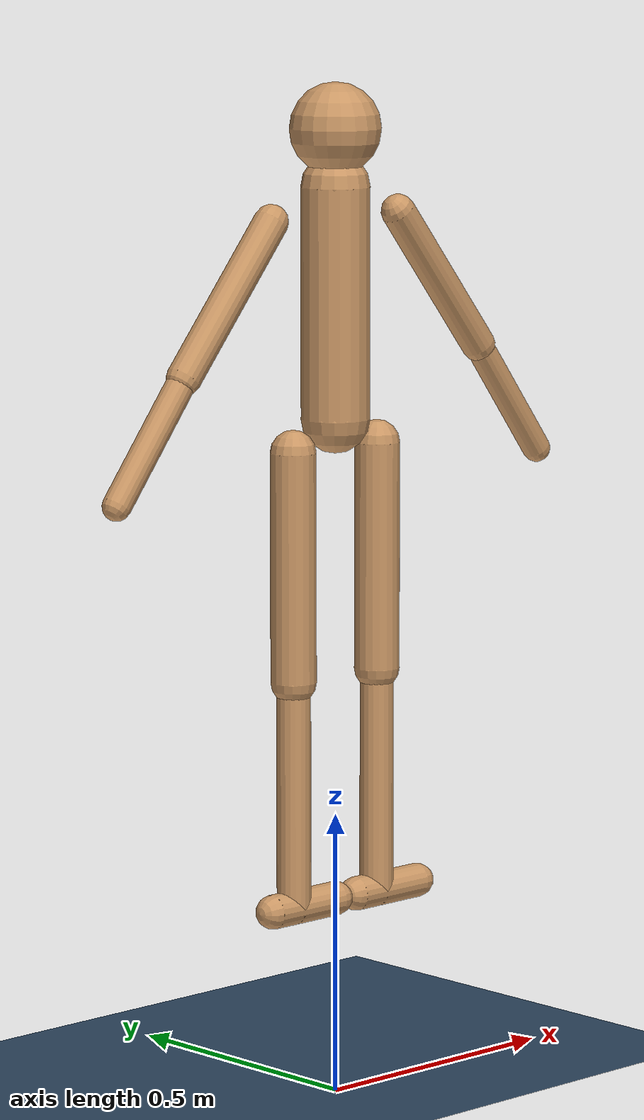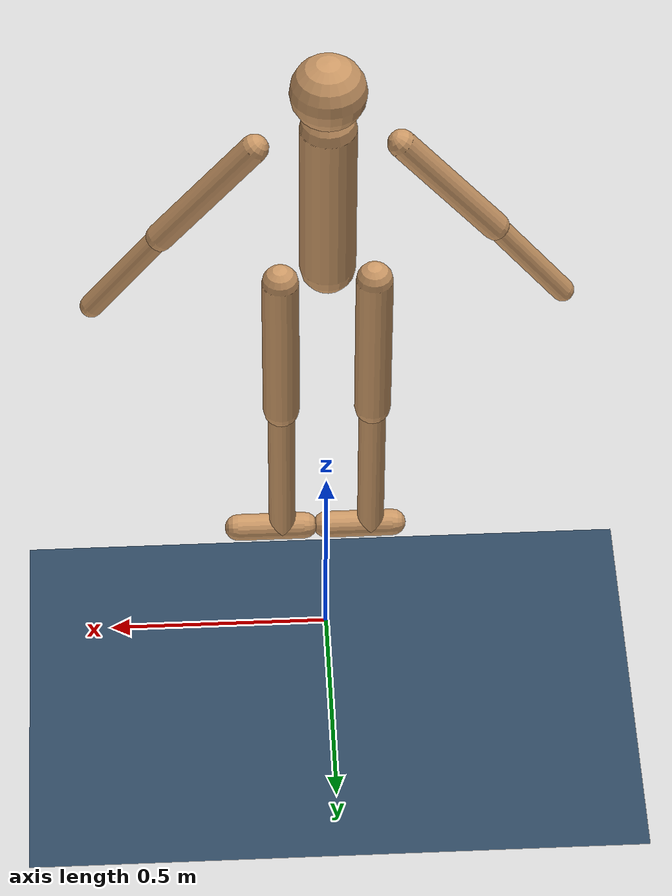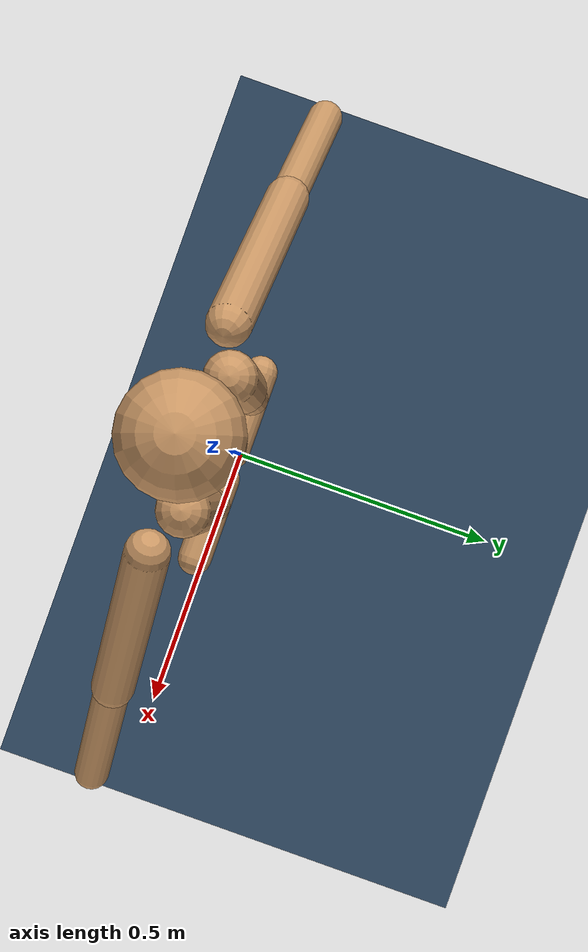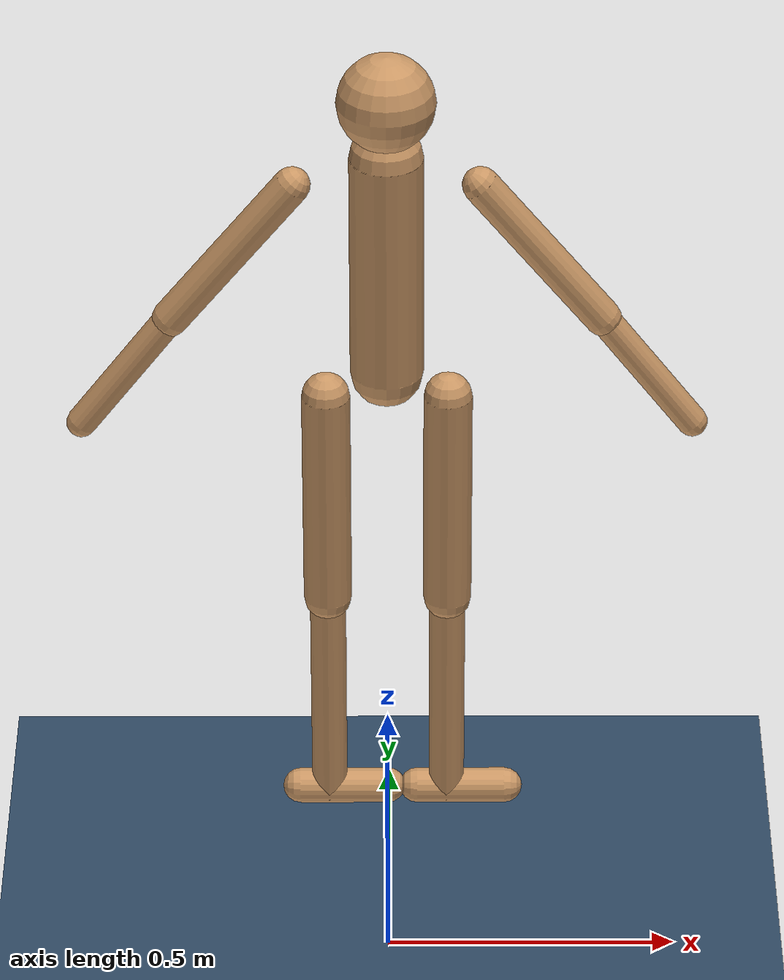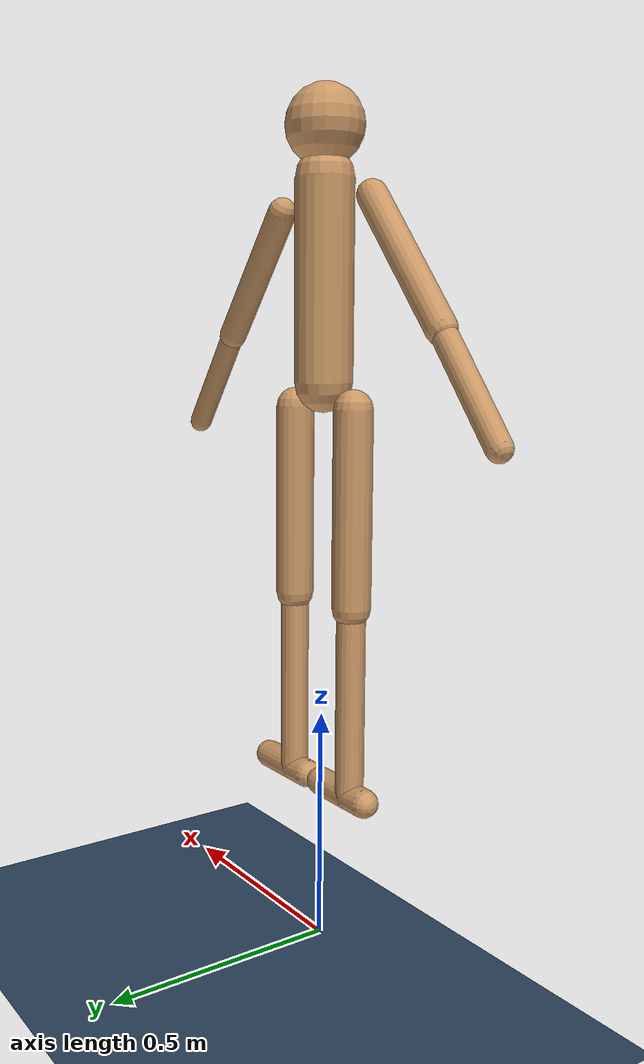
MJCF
<mujoco model="humanoid_plain_arena">
  <compiler angle="radian"/>
  <option timestep="0.005" gravity="0 0 -9.81" iterations="50" tolerance="1e-8"/>

  <default>
    <joint damping="0.5" armature="0.1"/>
    <geom friction="1.0 0.5 0.5" condim="3" contype="2" conaffinity="1"/>
    <motor ctrlrange="-1 1" ctrllimited="true"/>
  </default>

  <asset>
    <texture type="skybox" builtin="gradient" rgb1="0.3 0.5 0.7" rgb2="0.1 0.2 0.4" width="512" height="512"/>
    <texture name="grid_tex" type="2d" builtin="checker" rgb1="0.2 0.3 0.4" rgb2="0.15 0.25 0.35" width="512" height="512" mark="none" markrgb="0.4 0.6 0.8"/>
    <material name="grid_mat" texture="grid_tex" texrepeat="12 12" reflectance="0.2"/>
    <material name="body_mat" rgba="0.8 0.6 0.4 1"/>
  </asset>

  <worldbody>
    <!-- Ground plane — large flat arena for free walking -->
    <geom name="ground" type="plane" size="12 12 0.1" material="grid_mat" contype="1" conaffinity="1"/>
    <light directional="true" pos="0 0 5" dir="0 0 -1" diffuse="0.8 0.8 0.8" specular="0.3 0.3 0.3"/>

    <!-- ─── Simplified Stick-figure Humanoid (same as obstacle scenes) ─── -->
    <body name="torso" pos="0 0 1.2">
      <joint name="root" type="free" damping="0.5"/>
      <geom name="torso_geom" type="capsule" size="0.06" fromto="0 0 0 0 0 0.4" material="body_mat" mass="5" contype="2" conaffinity="1"/>
      <site name="torso_top" pos="0 0 0.4" size="0.01"/>

      <!-- Head: 3 serial hinge joints -->
      <body name="head" pos="0 0 0.5">
        <joint name="head_x" type="hinge" axis="1 0 0" damping="1" armature="0.2" range="-0.5 0.5"/>
        <inertial pos="0 0 0" mass="0.001" diaginertia="1e-6 1e-6 1e-6"/>
        <body name="head_y_body" pos="0 0 0">
          <joint name="head_y" type="hinge" axis="0 1 0" damping="1" armature="0.2" range="-0.5 0.5"/>
          <inertial pos="0 0 0" mass="0.001" diaginertia="1e-6 1e-6 1e-6"/>
          <body name="head_z_body" pos="0 0 0">
            <joint name="head_z" type="hinge" axis="0 0 1" damping="1" armature="0.2" range="-0.5 0.5"/>
            <geom name="head_geom" type="sphere" size="0.08" material="body_mat" mass="1" contype="2" conaffinity="1"/>
          </body>
        </body>
      </body>

      <!-- Left leg -->
      <body name="upper_leg_l" pos="0.10 0 -0.05">
        <joint name="hip_l_x" type="hinge" axis="1 0 0" damping="1" armature="0.2" range="-1.2 1.2"/>
        <inertial pos="0 0 0" mass="0.001" diaginertia="1e-6 1e-6 1e-6"/>
        <body name="hip_l_y_body" pos="0 0 0">
          <joint name="hip_l_y" type="hinge" axis="0 1 0" damping="1" armature="0.2" range="-1.5 1.5"/>
          <inertial pos="0 0 0" mass="0.001" diaginertia="1e-6 1e-6 1e-6"/>
          <body name="hip_l_z_body" pos="0 0 0">
            <joint name="hip_l_z" type="hinge" axis="0 0 1" damping="1" armature="0.2" range="-1.0 1.0"/>
            <geom name="upper_leg_l_geom" type="capsule" size="0.04" fromto="0 0 0 0 0 -0.4" material="body_mat" mass="2" contype="2" conaffinity="1"/>
            <body name="lower_leg_l" pos="0 0 -0.4">
              <joint name="knee_l" type="hinge" axis="0 1 0" damping="1" armature="0.2" range="-2.0 0.01"/>
              <geom name="lower_leg_l_geom" type="capsule" size="0.03" fromto="0 0 0 0 0 -0.4" material="body_mat" mass="1" contype="2" conaffinity="1"/>
              <body name="foot_l" pos="0 0 -0.4">
                <joint name="ankle_l" type="hinge" axis="0 1 0" damping="0.5" armature="0.1" range="-0.5 0.5"/>
                <geom name="foot_l_geom" type="capsule" size="0.03 0.1" fromto="-0.05 0 0 0.1 0 0" material="body_mat" mass="0.5" contype="2" conaffinity="1"/>
                <site name="foot_l_site" pos="0 0 0" size="0.01"/>
              </body>
            </body>
          </body>
        </body>
      </body>

      <!-- Right leg -->
      <body name="upper_leg_r" pos="-0.10 0 -0.05">
        <joint name="hip_r_x" type="hinge" axis="1 0 0" damping="1" armature="0.2" range="-1.2 1.2"/>
        <inertial pos="0 0 0" mass="0.001" diaginertia="1e-6 1e-6 1e-6"/>
        <body name="hip_r_y_body" pos="0 0 0">
          <joint name="hip_r_y" type="hinge" axis="0 1 0" damping="1" armature="0.2" range="-1.5 1.5"/>
          <inertial pos="0 0 0" mass="0.001" diaginertia="1e-6 1e-6 1e-6"/>
          <body name="hip_r_z_body" pos="0 0 0">
            <joint name="hip_r_z" type="hinge" axis="0 0 1" damping="1" armature="0.2" range="-1.0 1.0"/>
            <geom name="upper_leg_r_geom" type="capsule" size="0.04" fromto="0 0 0 0 0 -0.4" material="body_mat" mass="2" contype="2" conaffinity="1"/>
            <body name="lower_leg_r" pos="0 0 -0.4">
              <joint name="knee_r" type="hinge" axis="0 1 0" damping="1" armature="0.2" range="-2.0 0.01"/>
              <geom name="lower_leg_r_geom" type="capsule" size="0.03" fromto="0 0 0 0 0 -0.4" material="body_mat" mass="1" contype="2" conaffinity="1"/>
              <body name="foot_r" pos="0 0 -0.4">
                <joint name="ankle_r" type="hinge" axis="0 1 0" damping="0.5" armature="0.1" range="-0.5 0.5"/>
                <geom name="foot_r_geom" type="capsule" size="0.03 0.1" fromto="-0.05 0 0 0.1 0 0" material="body_mat" mass="0.5" contype="2" conaffinity="1"/>
                <site name="foot_r_site" pos="0 0 0" size="0.01"/>
              </body>
            </body>
          </body>
        </body>
      </body>

      <!-- Left arm -->
      <body name="upper_arm_l" pos="0.15 0 0.35">
        <joint name="shoulder_l_x" type="hinge" axis="1 0 0" damping="1" armature="0.1" range="-1.5 1.5"/>
        <inertial pos="0 0 0" mass="0.001" diaginertia="1e-6 1e-6 1e-6"/>
        <body name="shoulder_l_y_body" pos="0 0 0">
          <joint name="shoulder_l_y" type="hinge" axis="0 1 0" damping="1" armature="0.1" range="-1.5 1.5"/>
          <inertial pos="0 0 0" mass="0.001" diaginertia="1e-6 1e-6 1e-6"/>
          <body name="shoulder_l_z_body" pos="0 0 0">
            <joint name="shoulder_l_z" type="hinge" axis="0 0 1" damping="1" armature="0.1" range="-1.5 1.5"/>
            <geom name="upper_arm_l_geom" type="capsule" size="0.03" fromto="0 0 0 0.2 0 -0.25" material="body_mat" mass="1" contype="2" conaffinity="1"/>
            <body name="lower_arm_l" pos="0.2 0 -0.25">
              <joint name="elbow_l" type="hinge" axis="0 1 0" damping="0.5" armature="0.1" range="-2.5 0"/>
              <geom name="lower_arm_l_geom" type="capsule" size="0.025" fromto="0 0 0 0.15 0 -0.2" material="body_mat" mass="0.5" contype="2" conaffinity="1"/>
            </body>
          </body>
        </body>
      </body>

      <!-- Right arm -->
      <body name="upper_arm_r" pos="-0.15 0 0.35">
        <joint name="shoulder_r_x" type="hinge" axis="1 0 0" damping="1" armature="0.1" range="-1.5 1.5"/>
        <inertial pos="0 0 0" mass="0.001" diaginertia="1e-6 1e-6 1e-6"/>
        <body name="shoulder_r_y_body" pos="0 0 0">
          <joint name="shoulder_r_y" type="hinge" axis="0 1 0" damping="1" armature="0.1" range="-1.5 1.5"/>
          <inertial pos="0 0 0" mass="0.001" diaginertia="1e-6 1e-6 1e-6"/>
          <body name="shoulder_r_z_body" pos="0 0 0">
            <joint name="shoulder_r_z" type="hinge" axis="0 0 1" damping="1" armature="0.1" range="-1.5 1.5"/>
            <geom name="upper_arm_r_geom" type="capsule" size="0.03" fromto="0 0 0 -0.2 0 -0.25" material="body_mat" mass="1" contype="2" conaffinity="1"/>
            <body name="lower_arm_r" pos="-0.2 0 -0.25">
              <joint name="elbow_r" type="hinge" axis="0 1 0" damping="0.5" armature="0.1" range="-2.5 0"/>
              <geom name="lower_arm_r_geom" type="capsule" size="0.025" fromto="0 0 0 -0.15 0 -0.2" material="body_mat" mass="0.5" contype="2" conaffinity="1"/>
            </body>
          </body>
        </body>
      </body>
    </body>
  </worldbody>

  <!-- Actuators: same as obstacle scenes (gear=100 for legs) -->
  <actuator>
    <motor name="act_head_x" joint="head_x" gear="20" ctrlrange="-1 1"/>
    <motor name="act_head_y" joint="head_y" gear="20" ctrlrange="-1 1"/>
    <motor name="act_head_z" joint="head_z" gear="20" ctrlrange="-1 1"/>
    <motor name="act_hip_l_x" joint="hip_l_x" gear="100" ctrlrange="-1 1"/>
    <motor name="act_hip_l_y" joint="hip_l_y" gear="100" ctrlrange="-1 1"/>
    <motor name="act_hip_l_z" joint="hip_l_z" gear="80" ctrlrange="-1 1"/>
    <motor name="act_hip_r_x" joint="hip_r_x" gear="100" ctrlrange="-1 1"/>
    <motor name="act_hip_r_y" joint="hip_r_y" gear="100" ctrlrange="-1 1"/>
    <motor name="act_hip_r_z" joint="hip_r_z" gear="80" ctrlrange="-1 1"/>
    <motor name="act_knee_l" joint="knee_l" gear="100" ctrlrange="-1 1"/>
    <motor name="act_knee_r" joint="knee_r" gear="100" ctrlrange="-1 1"/>
    <motor name="act_ankle_l" joint="ankle_l" gear="60" ctrlrange="-1 1"/>
    <motor name="act_ankle_r" joint="ankle_r" gear="60" ctrlrange="-1 1"/>
    <motor name="act_shoulder_l_x" joint="shoulder_l_x" gear="50" ctrlrange="-1 1"/>
    <motor name="act_shoulder_l_y" joint="shoulder_l_y" gear="50" ctrlrange="-1 1"/>
    <motor name="act_shoulder_l_z" joint="shoulder_l_z" gear="50" ctrlrange="-1 1"/>
    <motor name="act_shoulder_r_x" joint="shoulder_r_x" gear="50" ctrlrange="-1 1"/>
    <motor name="act_shoulder_r_y" joint="shoulder_r_y" gear="50" ctrlrange="-1 1"/>
    <motor name="act_shoulder_r_z" joint="shoulder_r_z" gear="50" ctrlrange="-1 1"/>
    <motor name="act_elbow_l" joint="elbow_l" gear="40" ctrlrange="-1 1"/>
    <motor name="act_elbow_r" joint="elbow_r" gear="40" ctrlrange="-1 1"/>
  </actuator>

  <!-- Contact exclusions -->
  <contact>
    <exclude body1="torso" body2="upper_leg_l"/>
    <exclude body1="torso" body2="upper_leg_r"/>
    <exclude body1="torso" body2="upper_arm_l"/>
    <exclude body1="torso" body2="upper_arm_r"/>
    <exclude body1="upper_leg_l" body2="lower_leg_l"/>
    <exclude body1="upper_leg_r" body2="lower_leg_r"/>
    <exclude body1="lower_leg_l" body2="foot_l"/>
    <exclude body1="lower_leg_r" body2="foot_r"/>
    <exclude body1="upper_arm_l" body2="lower_arm_l"/>
    <exclude body1="upper_arm_r" body2="lower_arm_r"/>
    <exclude body1="torso" body2="head"/>
  </contact>
</mujoco>
